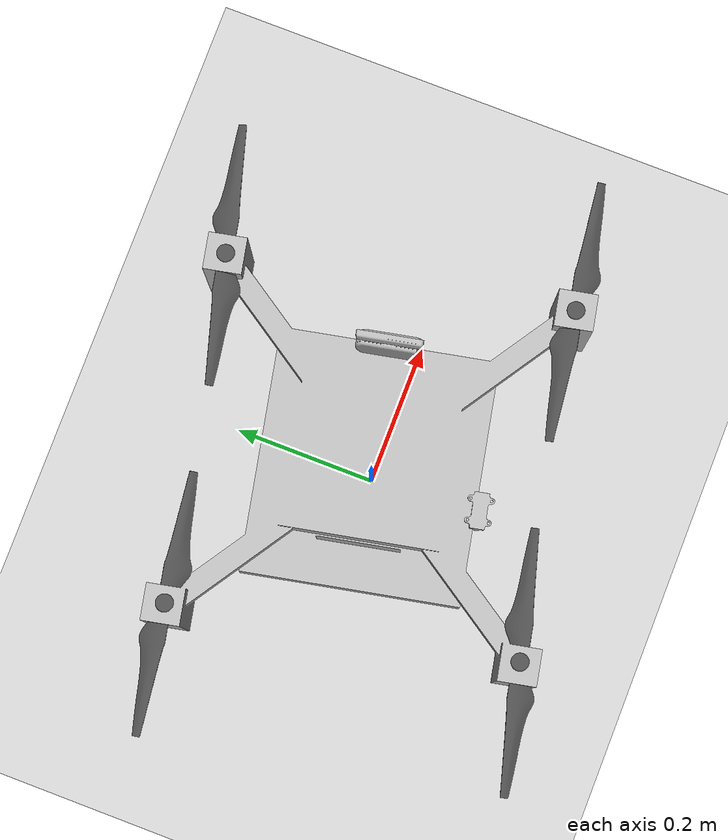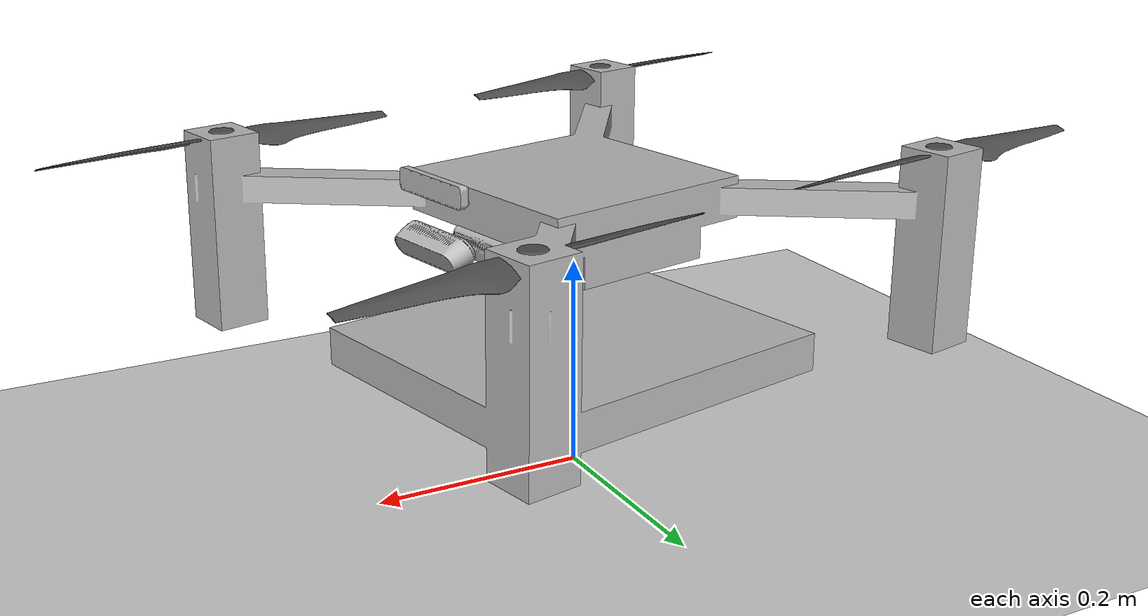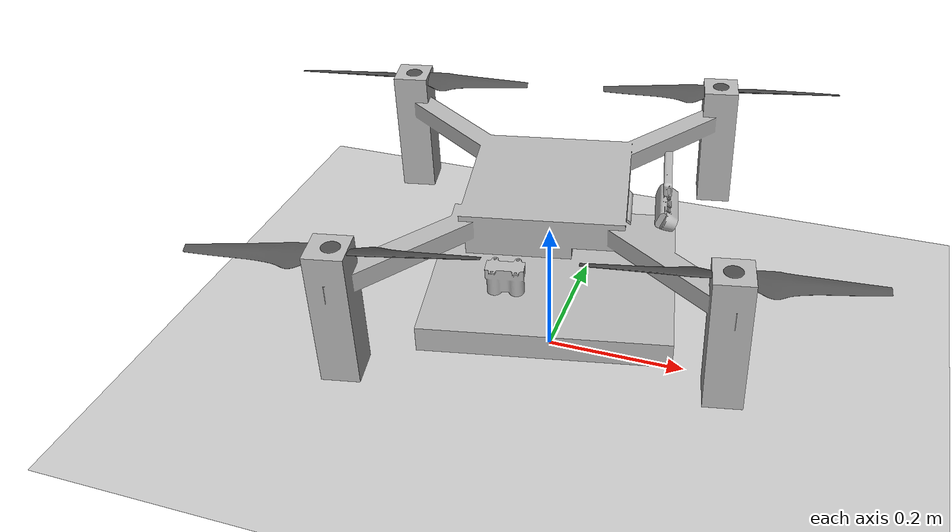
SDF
<sdf version="1.6">
 <world name="default">
  <light name="sun" type="directional">
   <pose>0 0 10 0 -0 0</pose>
   <diffuse>0.8 0.8 0.8 1</diffuse>
   <specular>0.2 0.2 0.2 1</specular>
   <attenuation>
    <range>1000</range>
    <constant>0.9</constant>
    <linear>0.01</linear>
    <quadratic>0.001</quadratic>
   </attenuation>
   <direction>-0.5 0.1 -0.9</direction>
  </light>
  <include><uri>model://maav_matrice</uri><pose>0 0 0.25 0 0 0.2</pose></include>
  <include><uri>model://asphalt_plane</uri></include>
  <physics name="default_physics" default="0" type="ode">
   <ode>
    <solver>
     <type>quick</type>
     <iters>10</iters>
     <sor>1.3</sor>
     <use_dynamic_moi_rescaling>0</use_dynamic_moi_rescaling>
    </solver>
    <constraints>
     <cfm>0</cfm>
     <erp>0.2</erp>
     <contact_max_correcting_vel>100</contact_max_correcting_vel>
     <contact_surface_layer>0.001</contact_surface_layer>
    </constraints>
   </ode>
   <max_step_size>0.001</max_step_size>
   <real_time_factor>1</real_time_factor>
   <real_time_update_rate>1000</real_time_update_rate>
  </physics>
  <gravity>0 0 -9.8066</gravity>
  <magnetic_field>6e-06 2.3e-05 -4.2e-05</magnetic_field>
  <atmosphere type="adiabatic"/>
  <scene><ambient>0.4 0.4 0.4 1</ambient><background>0.7 0.7 0.7 1</background><shadows>1</shadows></scene>
  <spherical_coordinates>
   <surface_model>EARTH_WGS84</surface_model>
   <latitude_deg>0</latitude_deg>
   <longitude_deg>0</longitude_deg>
   <elevation>0</elevation>
   <heading_deg>0</heading_deg>
  </spherical_coordinates>
 </world>
</sdf>

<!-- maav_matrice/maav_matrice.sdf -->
<sdf version="1.6">

  <model name="MaavMatrice">

    <pose>0 0 0.2 0 0 0</pose>

    <self_collide>false</self_collide>

    <static>false</static>

    <plugin name="VehiclePlugin" filename="libMaavVehiclePlugin.so">
      <imu>
        <model_name>MaavImu</model_name>
        <joint_name>MaavImuJoint</joint_name>
      </imu>
    </plugin>

    <!--                    Maav Sensors                            -->

    <model name="SLAM Camera">
      <include>
        <uri>model://t265</uri>
        <pose>0.155 0 0.05 0 0 0</pose>
      </include>
    </model>

    <joint name="SLAM Camera Joint" type="fixed">
      <parent>fuselage</parent>
      <child>MaavMatrice::SLAM Camera::T265::link</child>
    </joint>

    <model name="Forward Camera">
      <include>
        <uri>model://d435</uri>
        <pose>0.155 0 0.0 0 0.4 0</pose>
      </include>
    </model>

    <joint name="Forward Camera Joint" type="fixed">
      <parent>fuselage</parent>
      <child>MaavMatrice::Forward Camera::D435::link</child>
    </joint>

    <model name="Downward Camera">
      <include>
        <uri>model://d435</uri>
        <pose>0.1 0.0 -0.0125 0 1.57 0</pose>
      </include>
      <plugin name='planefit_plugin' filename='libMaavPlanefitPlugin.so'></plugin>
    </model>

    <joint name="Downward Camera Joint" type="fixed">
      <parent>fuselage</parent>
      <child>MaavMatrice::Downward Camera::D435::link</child>
    </joint>

    <model name="Height Lidar">
      <include>
        <uri>model://lidar_lite</uri>
        <pose>-0.04 -0.15 -0.0175 0 1.57 0</pose>
      </include>
    </model>

    <joint name="Height Lidar Joint" type="fixed">
      <parent>fuselage</parent>
      <child>MaavMatrice::Height Lidar::LidarLite::link</child>
    </joint>

    <plugin name='ImuPlugin' filename='libMaavImuPlugin.so'>
      <robotNamespace></robotNamespace>
      <linkName>fuselage</linkName>
      <imuTopic>/imu</imuTopic>
      <gyroscopeNoiseDensity>0.005235987756</gyroscopeNoiseDensity>
      <gyroscopeRandomWalk>0.00000002424068406</gyroscopeRandomWalk>
      <gyroscopeBiasCorrelationTime>1000.0</gyroscopeBiasCorrelationTime>
      <gyroscopeTurnOnBiasSigma>0.00436332313</gyroscopeTurnOnBiasSigma>
      <accelerometerNoiseDensity>0.00784532</accelerometerNoiseDensity>
      <accelerometerRandomWalk>0.0000001089627778</accelerometerRandomWalk>
      <accelerometerBiasCorrelationTime>300.0</accelerometerBiasCorrelationTime>
      <accelerometerTurnOnBiasSigma>0.0196133</accelerometerTurnOnBiasSigma>
      <frequency>200</frequency>

    </plugin>

    <!--                    Vehicle Dynamics                        -->

    <link name="fuselage">
      <inertial>
        <mass>2</mass>
        <inertia>
          <ixx>0.0216666666667</ixx>
          <iyy>0.0216666666667</iyy>
          <izz>0.04</izz>
        </inertia>
      </inertial>

      <gravity>true</gravity>
      <self_collide>false</self_collide>
      <velocity_decay/>

      <visual name="fuselage_visual">
        <geometry>
          <mesh>
            <scale>1 1 1</scale>
            <uri>model://maav_matrice/meshes/Matrice_100.dae</uri>
          </mesh>
        </geometry>
      </visual>

      <collision name="fuselage_collision">
        <pose>0 0 0 0 0 0</pose>
        <geometry>
          <mesh>
            <scale>1 1 1</scale>
            <uri>model://maav_matrice/meshes/Matrice_100_collision.dae</uri>
          </mesh>
        </geometry>
        <surface>
          <contact>
            <ode>
              <min_depth>0.001</min_depth>
              <max_vel>0</max_vel>
            </ode>
          </contact>
          <friction>
            <ode>
              <mu>1</mu>
              <mu2>1</mu2>
              <fdir1>0 0 0</fdir1>
              <slip1>0</slip1>
              <slip2>0</slip2>
            </ode>
            <torsional>
              <coefficient>1</coefficient>
              <patch_radius>0</patch_radius>
              <surface_radius>0</surface_radius>
              <use_patch_radius>1</use_patch_radius>
              <ode>
                <slip>0</slip>
              </ode>
            </torsional>
          </friction>
        </surface>
      </collision>
    </link>

    <!--Rotor 0 -->
    <link name="rotor_0">

      <gravity>true</gravity>
      <self_collide>false</self_collide>
      <velocity_decay/>

      <pose>0.229809703886 -0.229809703886 0.06 0 0 0</pose>
      <inertial>
        <mass>0.019</mass>
        <inertia>
          <ixx>6.34916666667e-07</ixx>
          <iyy>4.31078333333e-05</iyy>
          <izz>4.37395833333e-05</izz>
        </inertia>
      </inertial>
      <visual name="rotor_0_visual">
        <pose>0 0 0 0 0 0</pose>
        <geometry>
          <mesh>
            <scale>1 1 1</scale>
            <uri>model://matrice_100/meshes/dji_13455_prop_ccw.dae</uri>
          </mesh>
        </geometry>
        <material>
          <script>
            <name>Gazebo/DarkGrey</name>
            <uri>file://media/materials/scripts/gazebo.material</uri>
          </script>
        </material>
      </visual>

      <collision name="rotor_0_collision">
        <pose>0 0 0 0 0 0 </pose>
        <geometry>
          <box>
            <size>0.33 0.02 0.001</size>
          </box>
        </geometry>
        <surface>
          <contact>
            <ode>
              <min_depth>0.001</min_depth>
              <max_vel>0</max_vel>
            </ode>
          </contact>
          <friction>
            <ode/>
          </friction>
        </surface>
      </collision>

    </link>

    <joint name="rotor_0_joint" type="revolute">
      <parent>fuselage</parent>
      <child>rotor_0</child>
      <axis>
        <xyz>0 0 1</xyz>
        <limit>
          <lower>-1e+16</lower>
          <upper>1e+16</upper>
        </limit>
        <dynamics>
          <spring_reference>0</spring_reference>
          <spring_stiffness>0</spring_stiffness>
        </dynamics>
        <use_parent_model_frame>1</use_parent_model_frame>
      </axis>
    </joint>

    <plugin name='rotor_0_motor_model' filename='libgazebo_motor_model.so'>
      <robotNamespace></robotNamespace>
      <jointName>rotor_0_joint</jointName>
      <linkName>rotor_0</linkName>
      <turningDirection>ccw</turningDirection>
      <timeConstantUp>0.0125</timeConstantUp>
      <timeConstantDown>0.025</timeConstantDown>
      <maxRotVelocity>1100</maxRotVelocity>
      <motorConstant>8.54858e-06</motorConstant>
      <momentConstant>0.06</momentConstant>
      <commandSubTopic>/gazebo/command/motor_speed</commandSubTopic>
      <motorNumber>0</motorNumber>
      <rotorDragCoefficient>0.000806428</rotorDragCoefficient>
      <rollingMomentCoefficient>7.50302e-6</rollingMomentCoefficient>
      <motorSpeedPubTopic>/motor_speed/0</motorSpeedPubTopic>
      <rotorVelocitySlowdownSim>10</rotorVelocitySlowdownSim>
    </plugin>

    <!--Rotor 1 -->
    <link name="rotor_1">

      <gravity>true</gravity>
      <self_collide>false</self_collide>
      <velocity_decay/>

      <pose>-0.229809703886 0.229809703886 0.06 0 0 0</pose>
      <inertial>
        <mass>0.019</mass>
        <inertia>
          <ixx>6.34916666667e-07</ixx>
          <iyy>4.31078333333e-05</iyy>
          <izz>4.37395833333e-05</izz>
        </inertia>
      </inertial>
      <visual name="rotor_1_visual">
        <pose>0 0 0 0 0 0</pose>
        <geometry>
          <mesh>
            <scale>1 1 1</scale>
            <uri>model://matrice_100/meshes/dji_13455_prop_ccw.dae</uri>
          </mesh>
        </geometry>
        <material>
          <script>
            <name>Gazebo/DarkGrey</name>
            <uri>file://media/materials/scripts/gazebo.material</uri>
          </script>
        </material>
      </visual>

      <collision name="rotor_1_collision">
        <pose>0 0 0 0 0 0 </pose>
        <geometry>
          <box>
            <size>0.33 0.02 0.001</size>
          </box>
        </geometry>
        <surface>
          <contact>
            <ode>
              <min_depth>0.001</min_depth>
              <max_vel>0</max_vel>
            </ode>
          </contact>
          <friction>
            <ode/>
          </friction>
        </surface>
      </collision>

    </link>

    <joint name="rotor_1_joint" type="revolute">
      <parent>fuselage</parent>
      <child>rotor_1</child>
      <axis>
        <xyz>0 0 1</xyz>
        <limit>
          <lower>-1e+16</lower>
          <upper>1e+16</upper>
        </limit>
        <dynamics>
          <spring_reference>0</spring_reference>
          <spring_stiffness>0</spring_stiffness>
        </dynamics>
        <use_parent_model_frame>1</use_parent_model_frame>
      </axis>
    </joint>

    <plugin name='rotor_1_motor_model' filename='libgazebo_motor_model.so'>
      <robotNamespace></robotNamespace>
      <jointName>rotor_1_joint</jointName>
      <linkName>rotor_1</linkName>
      <turningDirection>ccw</turningDirection>
      <timeConstantUp>0.0125</timeConstantUp>
      <timeConstantDown>0.025</timeConstantDown>
      <maxRotVelocity>1100</maxRotVelocity>
      <motorConstant>8.54858e-06</motorConstant>
      <momentConstant>0.06</momentConstant>
      <commandSubTopic>/gazebo/command/motor_speed</commandSubTopic>
      <motorNumber>1</motorNumber>
      <rotorDragCoefficient>0.000806428</rotorDragCoefficient>
      <rollingMomentCoefficient>7.50302e-6</rollingMomentCoefficient>
      <motorSpeedPubTopic>/motor_speed/1</motorSpeedPubTopic>
      <rotorVelocitySlowdownSim>10</rotorVelocitySlowdownSim>
    </plugin>

    <!--Rotor 2 -->
    <link name="rotor_2">

      <gravity>true</gravity>
      <self_collide>false</self_collide>
      <velocity_decay/>

      <pose>0.229809703886 0.229809703886 0.06 0 0 0</pose>
      <inertial>
        <mass>0.019</mass>
        <inertia>
          <ixx>6.34916666667e-07</ixx>
          <iyy>4.31078333333e-05</iyy>
          <izz>4.37395833333e-05</izz>
        </inertia>
      </inertial>
      <visual name="rotor_2_visual">
        <pose>0 0 0 0 0 0</pose>
        <geometry>
          <mesh>
            <scale>1 1 1</scale>
            <uri>model://matrice_100/meshes/dji_13455_prop_cw.dae</uri>
          </mesh>
        </geometry>
        <material>
          <script>
            <name>Gazebo/DarkGrey</name>
            <uri>file://media/materials/scripts/gazebo.material</uri>
          </script>
        </material>
      </visual>

      <collision name="rotor_2_collision">
        <pose>0 0 0 0 0 0 </pose>
        <geometry>
          <box>
            <size>0.33 0.02 0.001</size>
          </box>
        </geometry>
        <surface>
          <contact>
            <ode>
              <min_depth>0.001</min_depth>
              <max_vel>0</max_vel>
            </ode>
          </contact>
          <friction>
            <ode/>
          </friction>
        </surface>
      </collision>

    </link>

    <joint name="rotor_2_joint" type="revolute">
      <parent>fuselage</parent>
      <child>rotor_2</child>
      <axis>
        <xyz>0 0 1</xyz>
        <limit>
          <lower>-1e+16</lower>
          <upper>1e+16</upper>
        </limit>
        <dynamics>
          <spring_reference>0</spring_reference>
          <spring_stiffness>0</spring_stiffness>
        </dynamics>
        <use_parent_model_frame>1</use_parent_model_frame>
      </axis>
    </joint>

    <plugin name='rotor_2_motor_model' filename='libgazebo_motor_model.so'>
      <robotNamespace></robotNamespace>
      <jointName>rotor_2_joint</jointName>
      <linkName>rotor_2</linkName>
      <turningDirection>cw</turningDirection>
      <timeConstantUp>0.0125</timeConstantUp>
      <timeConstantDown>0.025</timeConstantDown>
      <maxRotVelocity>1100</maxRotVelocity>
      <motorConstant>8.54858e-06</motorConstant>
      <momentConstant>0.06</momentConstant>
      <commandSubTopic>/gazebo/command/motor_speed</commandSubTopic>
      <motorNumber>2</motorNumber>
      <rotorDragCoefficient>0.000806428</rotorDragCoefficient>
      <rollingMomentCoefficient>7.50302e-6</rollingMomentCoefficient>
      <motorSpeedPubTopic>/motor_speed/2</motorSpeedPubTopic>
      <rotorVelocitySlowdownSim>10</rotorVelocitySlowdownSim>
    </plugin>

    <!--Rotor 3 -->
    <link name="rotor_3">

      <gravity>true</gravity>
      <self_collide>false</self_collide>
      <velocity_decay/>

      <pose>-0.229809703886 -0.229809703886 0.06 0 0 0</pose>
      <inertial>
        <mass>0.019</mass>
        <inertia>
          <ixx>6.34916666667e-07</ixx>
          <iyy>4.31078333333e-05</iyy>
          <izz>4.37395833333e-05</izz>
        </inertia>
      </inertial>
      <visual name="rotor_3_visual">
        <pose>0 0 0 0 0 0</pose>
        <geometry>
          <mesh>
            <scale>1 1 1</scale>
            <uri>model://matrice_100/meshes/dji_13455_prop_cw.dae</uri>
          </mesh>
        </geometry>
        <material>
          <script>
            <name>Gazebo/DarkGrey</name>
            <uri>file://media/materials/scripts/gazebo.material</uri>
          </script>
        </material>
      </visual>

      <collision name="rotor_3_collision">
        <pose>0 0 0 0 0 0 </pose>
        <geometry>
          <box>
            <size>0.33 0.02 0.001</size>
          </box>
        </geometry>
        <surface>
          <contact>
            <ode>
              <min_depth>0.001</min_depth>
              <max_vel>0</max_vel>
            </ode>
          </contact>
          <friction>
            <ode/>
          </friction>
        </surface>
      </collision>

    </link>

    <joint name="rotor_3_joint" type="revolute">
      <parent>fuselage</parent>
      <child>rotor_3</child>
      <axis>
        <xyz>0 0 1</xyz>
        <limit>
          <lower>-1e+16</lower>
          <upper>1e+16</upper>
        </limit>
        <dynamics>
          <spring_reference>0</spring_reference>
          <spring_stiffness>0</spring_stiffness>
        </dynamics>
        <use_parent_model_frame>1</use_parent_model_frame>
      </axis>
    </joint>

    <plugin name='rotor_3_motor_model' filename='libgazebo_motor_model.so'>
      <robotNamespace></robotNamespace>
      <jointName>rotor_3_joint</jointName>
      <linkName>rotor_3</linkName>
      <turningDirection>cw</turningDirection>
      <timeConstantUp>0.0125</timeConstantUp>
      <timeConstantDown>0.025</timeConstantDown>
      <maxRotVelocity>1100</maxRotVelocity>
      <motorConstant>8.54858e-06</motorConstant>
      <momentConstant>0.06</momentConstant>
      <commandSubTopic>/gazebo/command/motor_speed</commandSubTopic>
      <motorNumber>3</motorNumber>
      <rotorDragCoefficient>0.000806428</rotorDragCoefficient>
      <rollingMomentCoefficient>7.50302e-6</rollingMomentCoefficient>
      <motorSpeedPubTopic>/motor_speed/3</motorSpeedPubTopic>
      <rotorVelocitySlowdownSim>10</rotorVelocitySlowdownSim>
    </plugin>

    <plugin name="gps_plugin" filename="libgazebo_gps_plugin.so">
      <robotNamespace></robotNamespace>
      <gpsNoise>true</gpsNoise>
    </plugin>

    <plugin name='mavlink_interface' filename='libgazebo_mavlink_interface.so'>
      <robotNamespace/>
      <imuSubTopic>/imu</imuSubTopic>
      <gpsSubTopic>/gps</gpsSubTopic>
      <mavlink_addr>INADDR_ANY</mavlink_addr>
      <mavlink_udp_port>14560</mavlink_udp_port>
      <serialEnabled>0</serialEnabled>
      <serialDevice>/dev/ttyACM0</serialDevice>
      <baudRate>921600</baudRate>
      <qgc_addr>INADDR_ANY</qgc_addr>
      <qgc_udp_port>14550</qgc_udp_port>
      <hil_mode>0</hil_mode>
      <hil_state_level>0</hil_state_level>
      <vehicle_is_tailsitter>0</vehicle_is_tailsitter>
      <send_odometry>0</send_odometry>
      <motorSpeedCommandPubTopic>/gazebo/command/motor_speed</motorSpeedCommandPubTopic>
      <control_channels>
        <channel name='rotor1'>
          <input_index>0</input_index>
          <input_offset>0</input_offset>
          <input_scaling>1000</input_scaling>
          <zero_position_disarmed>0</zero_position_disarmed>
          <zero_position_armed>100</zero_position_armed>
          <joint_control_type>velocity</joint_control_type>
        </channel>
        <channel name='rotor2'>
          <input_index>1</input_index>
          <input_offset>0</input_offset>
          <input_scaling>1000</input_scaling>
          <zero_position_disarmed>0</zero_position_disarmed>
          <zero_position_armed>100</zero_position_armed>
          <joint_control_type>velocity</joint_control_type>
        </channel>
        <channel name='rotor3'>
          <input_index>2</input_index>
          <input_offset>0</input_offset>
          <input_scaling>1000</input_scaling>
          <zero_position_disarmed>0</zero_position_disarmed>
          <zero_position_armed>100</zero_position_armed>
          <joint_control_type>velocity</joint_control_type>
        </channel>
        <channel name='rotor4'>
          <input_index>3</input_index>
          <input_offset>0</input_offset>
          <input_scaling>1000</input_scaling>
          <zero_position_disarmed>0</zero_position_disarmed>
          <zero_position_armed>100</zero_position_armed>
          <joint_control_type>velocity</joint_control_type>
        </channel>
        <channel name='rotor5'>
          <input_index>4</input_index>
          <input_offset>1</input_offset>
          <input_scaling>324.6</input_scaling>
          <zero_position_disarmed>0</zero_position_disarmed>
          <zero_position_armed>0</zero_position_armed>
          <joint_control_type>velocity</joint_control_type>
          <joint_control_pid>
            <p>0.1</p>
            <i>0</i>
            <d>0</d>
            <iMax>0.0</iMax>
            <iMin>0.0</iMin>
            <cmdMax>2</cmdMax>
            <cmdMin>-2</cmdMin>
          </joint_control_pid>
          <joint_name>zephyr_delta_wing::propeller_joint</joint_name>
        </channel>
        <channel name='rotor6'>
          <input_index>5</input_index>
          <input_offset>0</input_offset>
          <input_scaling>0.524</input_scaling>
          <zero_position_disarmed>0</zero_position_disarmed>
          <zero_position_armed>0</zero_position_armed>
          <joint_control_type>position</joint_control_type>
          <joint_name>zephyr_delta_wing::flap_left_joint</joint_name>
          <joint_control_pid>
            <p>10.0</p>
            <i>0</i>
            <d>0</d>
            <iMax>0</iMax>
            <iMin>0</iMin>
            <cmdMax>20</cmdMax>
            <cmdMin>-20</cmdMin>
          </joint_control_pid>
        </channel>
        <channel name='rotor7'>
          <input_index>6</input_index>
          <input_offset>0</input_offset>
          <input_scaling>0.524</input_scaling>
          <zero_position_disarmed>0</zero_position_disarmed>
          <zero_position_armed>0</zero_position_armed>
          <joint_control_type>position</joint_control_type>
          <joint_name>zephyr_delta_wing::flap_right_joint</joint_name>
          <joint_control_pid>
            <p>10.0</p>
            <i>0</i>
            <d>0</d>
            <iMax>0</iMax>
            <iMin>0</iMin>
            <cmdMax>20</cmdMax>
            <cmdMin>-20</cmdMin>
          </joint_control_pid>
        </channel>
        <channel name='rotor8'>
          <input_index>7</input_index>
          <input_offset>0</input_offset>
          <input_scaling>0.524</input_scaling>
          <zero_position_disarmed>0</zero_position_disarmed>
          <zero_position_armed>0</zero_position_armed>
          <joint_control_type>position</joint_control_type>
        </channel>
      </control_channels>
    </plugin>

    <plugin name='gazebo_imu_plugin' filename='libgazebo_imu_plugin.so'>
      <robotNamespace></robotNamespace>
      <linkName>fuselage</linkName>
      <imuTopic>/imu</imuTopic>
      <gyroscopeNoiseDensity>0.0003394</gyroscopeNoiseDensity>
      <gyroscopeRandomWalk>3.8785e-05</gyroscopeRandomWalk>
      <gyroscopeBiasCorrelationTime>1000.0</gyroscopeBiasCorrelationTime>
      <gyroscopeTurnOnBiasSigma>0.0087</gyroscopeTurnOnBiasSigma>
      <accelerometerNoiseDensity>0.004</accelerometerNoiseDensity>
      <accelerometerRandomWalk>0.006</accelerometerRandomWalk>
      <accelerometerBiasCorrelationTime>300.0</accelerometerBiasCorrelationTime>
      <accelerometerTurnOnBiasSigma>0.196</accelerometerTurnOnBiasSigma>
    </plugin>
  </model>
</sdf>

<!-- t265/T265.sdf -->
<sdf version='1.6'>
  <model name='T265'>
    <plugin name='TrackingPlugin' filename='libRealsenseT265Plugin.so'></plugin>
    <pose frame="">0 0 0.015 0 0 0</pose>
    <link name="link">
      <inertial>
        <mass>0.07</mass>
        <inertia>
          <ixx>0.0000508</ixx>
          <iyy>0.00000729167</iyy>
          <izz>0.0000508</izz>
        </inertia>
        <pose frame=''>0 0 0 0 -0 0</pose>
      </inertial>
      <self_collide>0</self_collide>
      <enable_wind>0</enable_wind>
      <kinematic>0</kinematic>
      <gravity>1</gravity>
      <visual name="visual">
        <geometry>
          <mesh>
            <uri>model://t265/meshes/t265.dae</uri>
          </mesh>
        </geometry>
        <pose>0 0 0 0 0 1.57</pose>
      </visual>
      <sensor name="camera" type="camera">
        <pose frame="">0 0.03 0.00 0 0 0</pose>
        <camera name="__default__">
          <always_on>1</always_on>
          <update_rate>30</update_rate>
        </camera>
        <visualize>1</visualize>
      </sensor>
    </link>
  </model>
</sdf>

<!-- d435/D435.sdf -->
<sdf version='1.6'>
  <model name='D435'>
    <pose frame="">0 0 0.015 0 0 0</pose>
    <link name="link">
      <inertial>
        <mass>0.07</mass>
        <inertia>
          <ixx>0.0000508</ixx>
          <iyy>0.00000729167</iyy>
          <izz>0.0000508</izz>
        </inertia>
        <pose frame=''>0 0 0 0 -0 0</pose>
      </inertial>
      <self_collide>0</self_collide>
      <enable_wind>0</enable_wind>
      <kinematic>0</kinematic>
      <gravity>1</gravity>
      <visual name="visual">
        <geometry>
          <mesh>
            <uri>model://d435/meshes/d435.dae</uri>
          </mesh>
        </geometry>
        <pose>0 0 0 0 0 1.57</pose>
      </visual>
      <sensor name="color" type="camera">
        <pose frame="">0 0.03 0.00 0 0 0</pose>
        <camera name="__default__">
          <horizontal_fov>1.047</horizontal_fov>
          <image>
            <width>640</width>
            <height>480</height>
            <format>RGB_INT8</format>
          </image>
          <clip>
            <near>0.1</near>
            <far>100</far>
          </clip>
          <noise>
            <type>gaussian</type>
            <mean>0.0</mean>
            <stddev>0.007</stddev>
          </noise>
        </camera>
        <always_on>1</always_on>
        <update_rate>15</update_rate>
        <visualize>1</visualize>
      </sensor>
      <sensor name="depth" type="depth">
        <pose frame="">0 0.03 0.00 0 0 0</pose>
        <camera name="camera">
          <horizontal_fov>1.047</horizontal_fov>
          <image>
            <width>640</width>
            <height>480</height>
          </image>
          <clip>
            <near>0.1</near>
            <far>100</far>
          </clip>
          <noise>
            <type>gaussian</type>
            <mean>0.0</mean>
            <stddev>0.007</stddev>
          </noise>
          <depth_camera>
            <output>points</output>
          </depth_camera>
        </camera>
        <always_on>1</always_on>
        <update_rate>15</update_rate>
        <visualize>0</visualize>
        <plugin name="MaavCameraPlugin" filename="libMaavCameraPlugin.so"></plugin>
      </sensor>
    </link>
  </model>
</sdf>

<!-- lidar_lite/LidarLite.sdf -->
<sdf version='1.6'>
  <model name='LidarLite'>
    <link name="link">
      <inertial>
        <mass>0.027</mass>
        <inertia>
          <ixx>0.00000597</ixx>
          <iyy>0.00000867</iyy>
          <izz>0.0000045</izz>
        </inertia>
        <pose frame=''>0 0 0 0 -0 0</pose>
      </inertial>
      <self_collide>0</self_collide>
      <enable_wind>0</enable_wind>
      <kinematic>0</kinematic>
      <gravity>1</gravity>
      <visual name="visual">
        <pose>0 0 0 0 1.57 0</pose>
        <geometry>
          <mesh>
            <uri>model://lidar_lite/meshes/LidarLite.dae</uri>
          </mesh>
        </geometry>
      </visual>
      <sensor name='maav_lidar' type='ray'>
        <always_on>true</always_on>
        <update_rate>50</update_rate>
        <visualize>true</visualize>
        <pose>0.00 0 0 0 0 0</pose>
        <ray>
          <scan>
            <horizontal>
              <samples>2</samples>
              <resolution>1</resolution>
              <min_angle>0</min_angle>
              <max_angle>0</max_angle>
            </horizontal>
            <vertical>
              <samples>2</samples>
              <resolution>1</resolution>
              <min_angle>-0</min_angle>
              <max_angle>0</max_angle>
            </vertical>
          </scan>
          <range>
            <min>0.03</min>
            <max>10</max>
            <resolution>0.01</resolution>
          </range>
        </ray>
        <plugin name="maav_lidar_plugin" filename="libMaavLidarPlugin.so">
          <noise_density>0.02</noise_density>
          <bias_mean>0.09</bias_mean>
          <bias_std>0.01</bias_std>
          <outlier_mean>9.99</outlier_mean>
          <outlier_std>1</outlier_std>
          <outlier_freq>150</outlier_freq>
          <outlier_chi>1</outlier_chi>
        </plugin>
      </sensor>
    </link>
  </model>
</sdf>
